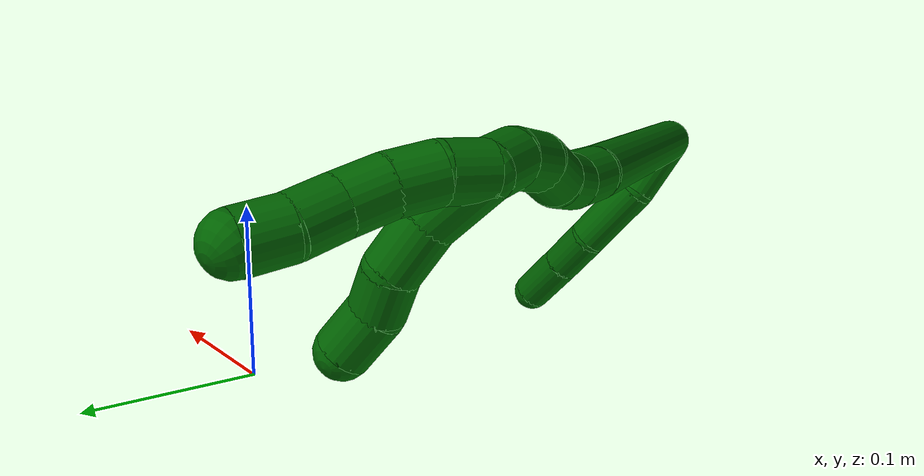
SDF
<sdf version="1.7">
 <world name="default">
  <model name="6">
   <static>0</static>
   <link name="6">
    <collision name="collision-cylinder-e_1_2_8">
     <pose>0.009391 -0.010909 -0.011493 2.38226 0.534967 1.20362</pose>
     <geometry><cylinder><radius>0.0125</radius><length>0.03684</length></cylinder></geometry>
     <surface>
      <friction><ode><mu>1.16</mu><mu2>1.16</mu2><slip1>0</slip1><slip2>0</slip2></ode></friction>
      <contact><ode><kp>1e+06</kp><kd>1</kd><max_vel>0</max_vel><min_depth>0.001</min_depth></ode></contact>
     </surface>
    </collision>
    <visual name="visual-cylinder-e_1_2_8">
     <pose>0.009391 -0.010909 -0.011493 2.38226 0.534967 1.20362</pose>
     <geometry><cylinder><radius>0.0125</radius><length>0.03684</length></cylinder></geometry>
     <material><ambient>0 0.392157 0.003922 1</ambient></material>
    </visual>
    <collision name="collision-cylinder-e_2_8_9">
     <pose>0.035482 -0.034288 -0.032269 2.21071 0.821211 1.42835</pose>
     <geometry><cylinder><radius>0.0125</radius><length>0.045631</length></cylinder></geometry>
     <surface>
      <friction><ode><mu>1.16</mu><mu2>1.16</mu2><slip1>0</slip1><slip2>0</slip2></ode></friction>
      <contact><ode><kp>1e+06</kp><kd>1</kd><max_vel>0</max_vel><min_depth>0.001</min_depth></ode></contact>
     </surface>
    </collision>
    <visual name="visual-cylinder-e_2_8_9">
     <pose>0.035482 -0.034288 -0.032269 2.21071 0.821211 1.42835</pose>
     <geometry><cylinder><radius>0.0125</radius><length>0.045631</length></cylinder></geometry>
     <material><ambient>0 0.392157 0.003922 1</ambient></material>
    </visual>
    <collision name="collision-cylinder-e_3_9_10">
     <pose>0.064119 -0.055648 -0.044088 1.84872 0.911778 1.15247</pose>
     <geometry><cylinder><radius>0.0125</radius><length>0.030198</length></cylinder></geometry>
     <surface>
      <friction><ode><mu>1.16</mu><mu2>1.16</mu2><slip1>0</slip1><slip2>0</slip2></ode></friction>
      <contact><ode><kp>1e+06</kp><kd>1</kd><max_vel>0</max_vel><min_depth>0.001</min_depth></ode></contact>
     </surface>
    </collision>
    <visual name="visual-cylinder-e_3_9_10">
     <pose>0.064119 -0.055648 -0.044088 1.84872 0.911778 1.15247</pose>
     <geometry><cylinder><radius>0.0125</radius><length>0.030198</length></cylinder></geometry>
     <material><ambient>0 0.392157 0.003922 1</ambient></material>
    </visual>
    <collision name="collision-cylinder-e_4_10_6">
     <pose>0.091075 -0.075342 -0.049103 1.7963 0.935015 1.12975</pose>
     <geometry><cylinder><radius>0.0125</radius><length>0.037331</length></cylinder></geometry>
     <surface>
      <friction><ode><mu>1.16</mu><mu2>1.16</mu2><slip1>0</slip1><slip2>0</slip2></ode></friction>
      <contact><ode><kp>1e+06</kp><kd>1</kd><max_vel>0</max_vel><min_depth>0.001</min_depth></ode></contact>
     </surface>
    </collision>
    <visual name="visual-cylinder-e_4_10_6">
     <pose>0.091075 -0.075342 -0.049103 1.7963 0.935015 1.12975</pose>
     <geometry><cylinder><radius>0.0125</radius><length>0.037331</length></cylinder></geometry>
     <material><ambient>0 0.392157 0.003922 1</ambient></material>
    </visual>
    <collision name="collision-cylinder-e_1_2_11">
     <pose>0.019877 -0.004861 0.000595 1.44893 1.32921 1.21257</pose>
     <geometry><cylinder><radius>0.0125</radius><length>0.040943</length></cylinder></geometry>
     <surface>
      <friction><ode><mu>1.16</mu><mu2>1.16</mu2><slip1>0</slip1><slip2>0</slip2></ode></friction>
      <contact><ode><kp>1e+06</kp><kd>1</kd><max_vel>0</max_vel><min_depth>0.001</min_depth></ode></contact>
     </surface>
    </collision>
    <visual name="visual-cylinder-e_1_2_11">
     <pose>0.019877 -0.004861 0.000595 1.44893 1.32921 1.21257</pose>
     <geometry><cylinder><radius>0.0125</radius><length>0.040943</length></cylinder></geometry>
     <material><ambient>0 0.392157 0.003922 1</ambient></material>
    </visual>
    <collision name="collision-cylinder-e_2_11_12">
     <pose>0.051887 -0.012657 0.001451 1.48224 1.33258 1.24741</pose>
     <geometry><cylinder><radius>0.0125</radius><length>0.02497</length></cylinder></geometry>
     <surface>
      <friction><ode><mu>1.16</mu><mu2>1.16</mu2><slip1>0</slip1><slip2>0</slip2></ode></friction>
      <contact><ode><kp>1e+06</kp><kd>1</kd><max_vel>0</max_vel><min_depth>0.001</min_depth></ode></contact>
     </surface>
    </collision>
    <visual name="visual-cylinder-e_2_11_12">
     <pose>0.051887 -0.012657 0.001451 1.48224 1.33258 1.24741</pose>
     <geometry><cylinder><radius>0.0125</radius><length>0.02497</length></cylinder></geometry>
     <material><ambient>0 0.392157 0.003922 1</ambient></material>
    </visual>
    <collision name="collision-cylinder-e_3_12_5">
     <pose>0.079421 -0.020235 0.007341 0.689728 1.12837 0.447025</pose>
     <geometry><cylinder><radius>0.0125</radius><length>0.034087</length></cylinder></geometry>
     <surface>
      <friction><ode><mu>1.16</mu><mu2>1.16</mu2><slip1>0</slip1><slip2>0</slip2></ode></friction>
      <contact><ode><kp>1e+06</kp><kd>1</kd><max_vel>0</max_vel><min_depth>0.001</min_depth></ode></contact>
     </surface>
    </collision>
    <visual name="visual-cylinder-e_3_12_5">
     <pose>0.079421 -0.020235 0.007341 0.689728 1.12837 0.447025</pose>
     <geometry><cylinder><radius>0.0125</radius><length>0.034087</length></cylinder></geometry>
     <material><ambient>0 0.392157 0.003922 1</ambient></material>
    </visual>
    <collision name="collision-cylinder-e_1_2_13">
     <pose>-0.033279 0.035618 -0.086123 -2.74944 -0.342963 1.43413</pose>
     <geometry><cylinder><radius>0.0125</radius><length>0.197922</length></cylinder></geometry>
     <surface>
      <friction><ode><mu>1.16</mu><mu2>1.16</mu2><slip1>0</slip1><slip2>0</slip2></ode></friction>
      <contact><ode><kp>1e+06</kp><kd>1</kd><max_vel>0</max_vel><min_depth>0.001</min_depth></ode></contact>
     </surface>
    </collision>
    <visual name="visual-cylinder-e_1_2_13">
     <pose>-0.033279 0.035618 -0.086123 -2.74944 -0.342963 1.43413</pose>
     <geometry><cylinder><radius>0.0125</radius><length>0.197922</length></cylinder></geometry>
     <material><ambient>0 0.392157 0.003922 1</ambient></material>
    </visual>
    <collision name="collision-cylinder-e_2_13_14">
     <pose>-0.067693 0.074848 -0.182299 -2.79674 -0.105903 0.590847</pose>
     <geometry><cylinder><radius>0.0125</radius><length>0.021484</length></cylinder></geometry>
     <surface>
      <friction><ode><mu>1.16</mu><mu2>1.16</mu2><slip1>0</slip1><slip2>0</slip2></ode></friction>
      <contact><ode><kp>1e+06</kp><kd>1</kd><max_vel>0</max_vel><min_depth>0.001</min_depth></ode></contact>
     </surface>
    </collision>
    <visual name="visual-cylinder-e_2_13_14">
     <pose>-0.067693 0.074848 -0.182299 -2.79674 -0.105903 0.590847</pose>
     <geometry><cylinder><radius>0.0125</radius><length>0.021484</length></cylinder></geometry>
     <material><ambient>0 0.392157 0.003922 1</ambient></material>
    </visual>
    <collision name="collision-cylinder-e_3_14_15">
     <pose>-0.071396 0.083766 -0.200626 -2.57132 -0.255549 0.826156</pose>
     <geometry><cylinder><radius>0.0125</radius><length>0.020319</length></cylinder></geometry>
     <surface>
      <friction><ode><mu>1.16</mu><mu2>1.16</mu2><slip1>0</slip1><slip2>0</slip2></ode></friction>
      <contact><ode><kp>1e+06</kp><kd>1</kd><max_vel>0</max_vel><min_depth>0.001</min_depth></ode></contact>
     </surface>
    </collision>
    <visual name="visual-cylinder-e_3_14_15">
     <pose>-0.071396 0.083766 -0.200626 -2.57132 -0.255549 0.826156</pose>
     <geometry><cylinder><radius>0.0125</radius><length>0.020319</length></cylinder></geometry>
     <material><ambient>0 0.392157 0.003922 1</ambient></material>
    </visual>
    <collision name="collision-cylinder-e_4_15_16">
     <pose>-0.07635 0.096497 -0.215325 -2.28413 -0.23837 0.512468</pose>
     <geometry><cylinder><radius>0.0125</radius><length>0.020207</length></cylinder></geometry>
     <surface>
      <friction><ode><mu>1.16</mu><mu2>1.16</mu2><slip1>0</slip1><slip2>0</slip2></ode></friction>
      <contact><ode><kp>1e+06</kp><kd>1</kd><max_vel>0</max_vel><min_depth>0.001</min_depth></ode></contact>
     </surface>
    </collision>
    <visual name="visual-cylinder-e_4_15_16">
     <pose>-0.07635 0.096497 -0.215325 -2.28413 -0.23837 0.512468</pose>
     <geometry><cylinder><radius>0.0125</radius><length>0.020207</length></cylinder></geometry>
     <material><ambient>0 0.392157 0.003922 1</ambient></material>
    </visual>
    <collision name="collision-cylinder-e_5_16_17">
     <pose>-0.079982 0.109361 -0.23006 -2.56195 -0.124846 0.413202</pose>
     <geometry><cylinder><radius>0.0125</radius><length>0.020021</length></cylinder></geometry>
     <surface>
      <friction><ode><mu>1.16</mu><mu2>1.16</mu2><slip1>0</slip1><slip2>0</slip2></ode></friction>
      <contact><ode><kp>1e+06</kp><kd>1</kd><max_vel>0</max_vel><min_depth>0.001</min_depth></ode></contact>
     </surface>
    </collision>
    <visual name="visual-cylinder-e_5_16_17">
     <pose>-0.079982 0.109361 -0.23006 -2.56195 -0.124846 0.413202</pose>
     <geometry><cylinder><radius>0.0125</radius><length>0.020021</length></cylinder></geometry>
     <material><ambient>0 0.392157 0.003922 1</ambient></material>
    </visual>
    <collision name="collision-cylinder-e_6_17_1">
     <pose>-0.082537 0.117259 -0.247998 -2.89163 -0.130871 0.96152</pose>
     <geometry><cylinder><radius>0.0125</radius><length>0.020046</length></cylinder></geometry>
     <surface>
      <friction><ode><mu>1.16</mu><mu2>1.16</mu2><slip1>0</slip1><slip2>0</slip2></ode></friction>
      <contact><ode><kp>1e+06</kp><kd>1</kd><max_vel>0</max_vel><min_depth>0.001</min_depth></ode></contact>
     </surface>
    </collision>
    <visual name="visual-cylinder-e_6_17_1">
     <pose>-0.082537 0.117259 -0.247998 -2.89163 -0.130871 0.96152</pose>
     <geometry><cylinder><radius>0.0125</radius><length>0.020046</length></cylinder></geometry>
     <material><ambient>0 0.392157 0.003922 1</ambient></material>
    </visual>
    <collision name="collision-cylinder-e_1_1_18">
     <pose>-0.072069 0.113315 -0.264922 2.42128 0.881431 1.79403</pose>
     <geometry><cylinder><radius>0.0125</radius><length>0.030521</length></cylinder></geometry>
     <surface>
      <friction><ode><mu>1.16</mu><mu2>1.16</mu2><slip1>0</slip1><slip2>0</slip2></ode></friction>
      <contact><ode><kp>1e+06</kp><kd>1</kd><max_vel>0</max_vel><min_depth>0.001</min_depth></ode></contact>
     </surface>
    </collision>
    <visual name="visual-cylinder-e_1_1_18">
     <pose>-0.072069 0.113315 -0.264922 2.42128 0.881431 1.79403</pose>
     <geometry><cylinder><radius>0.0125</radius><length>0.030521</length></cylinder></geometry>
     <material><ambient>0 0.392157 0.003922 1</ambient></material>
    </visual>
    <collision name="collision-cylinder-e_2_18_19">
     <pose>-0.052459 0.099636 -0.279118 2.32966 0.66317 1.35067</pose>
     <geometry><cylinder><radius>0.0125</radius><length>0.025451</length></cylinder></geometry>
     <surface>
      <friction><ode><mu>1.16</mu><mu2>1.16</mu2><slip1>0</slip1><slip2>0</slip2></ode></friction>
      <contact><ode><kp>1e+06</kp><kd>1</kd><max_vel>0</max_vel><min_depth>0.001</min_depth></ode></contact>
     </surface>
    </collision>
    <visual name="visual-cylinder-e_2_18_19">
     <pose>-0.052459 0.099636 -0.279118 2.32966 0.66317 1.35067</pose>
     <geometry><cylinder><radius>0.0125</radius><length>0.025451</length></cylinder></geometry>
     <material><ambient>0 0.392157 0.003922 1</ambient></material>
    </visual>
    <collision name="collision-cylinder-e_3_19_20">
     <pose>-0.039183 0.084488 -0.289074 1.94112 0.572544 0.812272</pose>
     <geometry><cylinder><radius>0.0125</radius><length>0.020092</length></cylinder></geometry>
     <surface>
      <friction><ode><mu>1.16</mu><mu2>1.16</mu2><slip1>0</slip1><slip2>0</slip2></ode></friction>
      <contact><ode><kp>1e+06</kp><kd>1</kd><max_vel>0</max_vel><min_depth>0.001</min_depth></ode></contact>
     </surface>
    </collision>
    <visual name="visual-cylinder-e_3_19_20">
     <pose>-0.039183 0.084488 -0.289074 1.94112 0.572544 0.812272</pose>
     <geometry><cylinder><radius>0.0125</radius><length>0.020092</length></cylinder></geometry>
     <material><ambient>0 0.392157 0.003922 1</ambient></material>
    </visual>
    <collision name="collision-cylinder-e_4_20_4">
     <pose>-0.025499 0.070083 -0.297844 2.28939 0.759529 1.44257</pose>
     <geometry><cylinder><radius>0.0125</radius><length>0.023936</length></cylinder></geometry>
     <surface>
      <friction><ode><mu>1.16</mu><mu2>1.16</mu2><slip1>0</slip1><slip2>0</slip2></ode></friction>
      <contact><ode><kp>1e+06</kp><kd>1</kd><max_vel>0</max_vel><min_depth>0.001</min_depth></ode></contact>
     </surface>
    </collision>
    <visual name="visual-cylinder-e_4_20_4">
     <pose>-0.025499 0.070083 -0.297844 2.28939 0.759529 1.44257</pose>
     <geometry><cylinder><radius>0.0125</radius><length>0.023936</length></cylinder></geometry>
     <material><ambient>0 0.392157 0.003922 1</ambient></material>
    </visual>
    <collision name="collision-cylinder-e_1_1_21">
     <pose>-0.080567 0.124157 -0.265966 -2.6524 0.333922 -1.1878</pose>
     <geometry><cylinder><radius>0.0125</radius><length>0.02</length></cylinder></geometry>
     <surface>
      <friction><ode><mu>1.16</mu><mu2>1.16</mu2><slip1>0</slip1><slip2>0</slip2></ode></friction>
      <contact><ode><kp>1e+06</kp><kd>1</kd><max_vel>0</max_vel><min_depth>0.001</min_depth></ode></contact>
     </surface>
    </collision>
    <visual name="visual-cylinder-e_1_1_21">
     <pose>-0.080567 0.124157 -0.265966 -2.6524 0.333922 -1.1878</pose>
     <geometry><cylinder><radius>0.0125</radius><length>0.02</length></cylinder></geometry>
     <material><ambient>0 0.392157 0.003922 1</ambient></material>
    </visual>
    <collision name="collision-cylinder-e_2_21_22">
     <pose>-0.073037 0.130953 -0.283045 -2.87823 0.439196 -2.07047</pose>
     <geometry><cylinder><radius>0.0125</radius><length>0.02</length></cylinder></geometry>
     <surface>
      <friction><ode><mu>1.16</mu><mu2>1.16</mu2><slip1>0</slip1><slip2>0</slip2></ode></friction>
      <contact><ode><kp>1e+06</kp><kd>1</kd><max_vel>0</max_vel><min_depth>0.001</min_depth></ode></contact>
     </surface>
    </collision>
    <visual name="visual-cylinder-e_2_21_22">
     <pose>-0.073037 0.130953 -0.283045 -2.87823 0.439196 -2.07047</pose>
     <geometry><cylinder><radius>0.0125</radius><length>0.02</length></cylinder></geometry>
     <material><ambient>0 0.392157 0.003922 1</ambient></material>
    </visual>
    <collision name="collision-cylinder-e_3_22_23">
     <pose>-0.065181 0.134582 -0.301024 -3.00468 0.368727 -2.43694</pose>
     <geometry><cylinder><radius>0.0125</radius><length>0.02</length></cylinder></geometry>
     <surface>
      <friction><ode><mu>1.16</mu><mu2>1.16</mu2><slip1>0</slip1><slip2>0</slip2></ode></friction>
      <contact><ode><kp>1e+06</kp><kd>1</kd><max_vel>0</max_vel><min_depth>0.001</min_depth></ode></contact>
     </surface>
    </collision>
    <visual name="visual-cylinder-e_3_22_23">
     <pose>-0.065181 0.134582 -0.301024 -3.00468 0.368727 -2.43694</pose>
     <geometry><cylinder><radius>0.0125</radius><length>0.02</length></cylinder></geometry>
     <material><ambient>0 0.392157 0.003922 1</ambient></material>
    </visual>
    <collision name="collision-cylinder-e_4_23_24">
     <pose>-0.059475 0.13734 -0.319928 -2.98918 0.211784 -1.89572</pose>
     <geometry><cylinder><radius>0.0125</radius><length>0.02</length></cylinder></geometry>
     <surface>
      <friction><ode><mu>1.16</mu><mu2>1.16</mu2><slip1>0</slip1><slip2>0</slip2></ode></friction>
      <contact><ode><kp>1e+06</kp><kd>1</kd><max_vel>0</max_vel><min_depth>0.001</min_depth></ode></contact>
     </surface>
    </collision>
    <visual name="visual-cylinder-e_4_23_24">
     <pose>-0.059475 0.13734 -0.319928 -2.98918 0.211784 -1.89572</pose>
     <geometry><cylinder><radius>0.0125</radius><length>0.02</length></cylinder></geometry>
     <material><ambient>0 0.392157 0.003922 1</ambient></material>
    </visual>
    <collision name="collision-cylinder-e_5_24_3">
     <pose>-0.053921 0.14135 -0.33863 -2.86913 0.352411 -1.82938</pose>
     <geometry><cylinder><radius>0.0125</radius><length>0.02</length></cylinder></geometry>
     <surface>
      <friction><ode><mu>1.16</mu><mu2>1.16</mu2><slip1>0</slip1><slip2>0</slip2></ode></friction>
      <contact><ode><kp>1e+06</kp><kd>1</kd><max_vel>0</max_vel><min_depth>0.001</min_depth></ode></contact>
     </surface>
    </collision>
    <visual name="visual-cylinder-e_5_24_3">
     <pose>-0.053921 0.14135 -0.33863 -2.86913 0.352411 -1.82938</pose>
     <geometry><cylinder><radius>0.0125</radius><length>0.02</length></cylinder></geometry>
     <material><ambient>0 0.392157 0.003922 1</ambient></material>
    </visual>
    <collision name="collision-sphere-3">
     <pose>-0.050469 0.143875 -0.34767 0 -0 0</pose>
     <geometry><sphere><radius>0.0125</radius></sphere></geometry>
     <surface>
      <friction><ode><mu>1.16</mu><mu2>1.16</mu2><slip1>0</slip1><slip2>0</slip2></ode></friction>
      <contact><ode><kp>1e+06</kp><kd>1</kd><max_vel>0</max_vel><min_depth>0.001</min_depth></ode></contact>
     </surface>
    </collision>
    <visual name="visual-sphere-3">
     <pose>-0.050469 0.143875 -0.34767 0 -0 0</pose>
     <geometry><sphere><radius>0.0125</radius></sphere></geometry>
     <material><ambient>0 0.392157 0.003922 1</ambient></material>
    </visual>
    <collision name="collision-sphere-24">
     <pose>-0.057373 0.138824 -0.329591 0 -0 0</pose>
     <geometry><sphere><radius>0.0125</radius></sphere></geometry>
     <surface>
      <friction><ode><mu>1.16</mu><mu2>1.16</mu2><slip1>0</slip1><slip2>0</slip2></ode></friction>
      <contact><ode><kp>1e+06</kp><kd>1</kd><max_vel>0</max_vel><min_depth>0.001</min_depth></ode></contact>
     </surface>
    </collision>
    <visual name="visual-sphere-24">
     <pose>-0.057373 0.138824 -0.329591 0 -0 0</pose>
     <geometry><sphere><radius>0.0125</radius></sphere></geometry>
     <material><ambient>0 0.392157 0.003922 1</ambient></material>
    </visual>
    <collision name="collision-sphere-23">
     <pose>-0.061577 0.135855 -0.310265 0 -0 0</pose>
     <geometry><sphere><radius>0.0125</radius></sphere></geometry>
     <surface>
      <friction><ode><mu>1.16</mu><mu2>1.16</mu2><slip1>0</slip1><slip2>0</slip2></ode></friction>
      <contact><ode><kp>1e+06</kp><kd>1</kd><max_vel>0</max_vel><min_depth>0.001</min_depth></ode></contact>
     </surface>
    </collision>
    <visual name="visual-sphere-23">
     <pose>-0.061577 0.135855 -0.310265 0 -0 0</pose>
     <geometry><sphere><radius>0.0125</radius></sphere></geometry>
     <material><ambient>0 0.392157 0.003922 1</ambient></material>
    </visual>
    <collision name="collision-sphere-22">
     <pose>-0.068785 0.133309 -0.291784 0 -0 0</pose>
     <geometry><sphere><radius>0.0125</radius></sphere></geometry>
     <surface>
      <friction><ode><mu>1.16</mu><mu2>1.16</mu2><slip1>0</slip1><slip2>0</slip2></ode></friction>
      <contact><ode><kp>1e+06</kp><kd>1</kd><max_vel>0</max_vel><min_depth>0.001</min_depth></ode></contact>
     </surface>
    </collision>
    <visual name="visual-sphere-22">
     <pose>-0.068785 0.133309 -0.291784 0 -0 0</pose>
     <geometry><sphere><radius>0.0125</radius></sphere></geometry>
     <material><ambient>0 0.392157 0.003922 1</ambient></material>
    </visual>
    <collision name="collision-sphere-21">
     <pose>-0.07729 0.128597 -0.274306 0 -0 0</pose>
     <geometry><sphere><radius>0.0125</radius></sphere></geometry>
     <surface>
      <friction><ode><mu>1.16</mu><mu2>1.16</mu2><slip1>0</slip1><slip2>0</slip2></ode></friction>
      <contact><ode><kp>1e+06</kp><kd>1</kd><max_vel>0</max_vel><min_depth>0.001</min_depth></ode></contact>
     </surface>
    </collision>
    <visual name="visual-sphere-21">
     <pose>-0.07729 0.128597 -0.274306 0 -0 0</pose>
     <geometry><sphere><radius>0.0125</radius></sphere></geometry>
     <material><ambient>0 0.392157 0.003922 1</ambient></material>
    </visual>
    <collision name="collision-sphere-4">
     <pose>-0.017258 0.063551 -0.303557 0 -0 0</pose>
     <geometry><sphere><radius>0.0125</radius></sphere></geometry>
     <surface>
      <friction><ode><mu>1.16</mu><mu2>1.16</mu2><slip1>0</slip1><slip2>0</slip2></ode></friction>
      <contact><ode><kp>1e+06</kp><kd>1</kd><max_vel>0</max_vel><min_depth>0.001</min_depth></ode></contact>
     </surface>
    </collision>
    <visual name="visual-sphere-4">
     <pose>-0.017258 0.063551 -0.303557 0 -0 0</pose>
     <geometry><sphere><radius>0.0125</radius></sphere></geometry>
     <material><ambient>0 0.392157 0.003922 1</ambient></material>
    </visual>
    <collision name="collision-sphere-20">
     <pose>-0.03374 0.076616 -0.29213 0 -0 0</pose>
     <geometry><sphere><radius>0.0125</radius></sphere></geometry>
     <surface>
      <friction><ode><mu>1.16</mu><mu2>1.16</mu2><slip1>0</slip1><slip2>0</slip2></ode></friction>
      <contact><ode><kp>1e+06</kp><kd>1</kd><max_vel>0</max_vel><min_depth>0.001</min_depth></ode></contact>
     </surface>
    </collision>
    <visual name="visual-sphere-20">
     <pose>-0.03374 0.076616 -0.29213 0 -0 0</pose>
     <geometry><sphere><radius>0.0125</radius></sphere></geometry>
     <material><ambient>0 0.392157 0.003922 1</ambient></material>
    </visual>
    <collision name="collision-sphere-11">
     <pose>0.039754 -0.009723 0.001191 0 -0 0</pose>
     <geometry><sphere><radius>0.0125</radius></sphere></geometry>
     <surface>
      <friction><ode><mu>1.16</mu><mu2>1.16</mu2><slip1>0</slip1><slip2>0</slip2></ode></friction>
      <contact><ode><kp>1e+06</kp><kd>1</kd><max_vel>0</max_vel><min_depth>0.001</min_depth></ode></contact>
     </surface>
    </collision>
    <visual name="visual-sphere-11">
     <pose>0.039754 -0.009723 0.001191 0 -0 0</pose>
     <geometry><sphere><radius>0.0125</radius></sphere></geometry>
     <material><ambient>0 0.392157 0.003922 1</ambient></material>
    </visual>
    <collision name="collision-sphere-6">
     <pose>0.106093 -0.086145 -0.051581 0 -0 0</pose>
     <geometry><sphere><radius>0.0125</radius></sphere></geometry>
     <surface>
      <friction><ode><mu>1.16</mu><mu2>1.16</mu2><slip1>0</slip1><slip2>0</slip2></ode></friction>
      <contact><ode><kp>1e+06</kp><kd>1</kd><max_vel>0</max_vel><min_depth>0.001</min_depth></ode></contact>
     </surface>
    </collision>
    <visual name="visual-sphere-6">
     <pose>0.106093 -0.086145 -0.051581 0 -0 0</pose>
     <geometry><sphere><radius>0.0125</radius></sphere></geometry>
     <material><ambient>0 0.392157 0.003922 1</ambient></material>
    </visual>
    <collision name="collision-sphere-10">
     <pose>0.076056 -0.064539 -0.046625 0 -0 0</pose>
     <geometry><sphere><radius>0.0125</radius></sphere></geometry>
     <surface>
      <friction><ode><mu>1.16</mu><mu2>1.16</mu2><slip1>0</slip1><slip2>0</slip2></ode></friction>
      <contact><ode><kp>1e+06</kp><kd>1</kd><max_vel>0</max_vel><min_depth>0.001</min_depth></ode></contact>
     </surface>
    </collision>
    <visual name="visual-sphere-10">
     <pose>0.076056 -0.064539 -0.046625 0 -0 0</pose>
     <geometry><sphere><radius>0.0125</radius></sphere></geometry>
     <material><ambient>0 0.392157 0.003922 1</ambient></material>
    </visual>
    <collision name="collision-sphere-9">
     <pose>0.052182 -0.046757 -0.041551 0 -0 0</pose>
     <geometry><sphere><radius>0.0125</radius></sphere></geometry>
     <surface>
      <friction><ode><mu>1.16</mu><mu2>1.16</mu2><slip1>0</slip1><slip2>0</slip2></ode></friction>
      <contact><ode><kp>1e+06</kp><kd>1</kd><max_vel>0</max_vel><min_depth>0.001</min_depth></ode></contact>
     </surface>
    </collision>
    <visual name="visual-sphere-9">
     <pose>0.052182 -0.046757 -0.041551 0 -0 0</pose>
     <geometry><sphere><radius>0.0125</radius></sphere></geometry>
     <material><ambient>0 0.392157 0.003922 1</ambient></material>
    </visual>
    <collision name="collision-sphere-2">
     <geometry><sphere><radius>0.0125</radius></sphere></geometry>
     <surface>
      <friction><ode><mu>1.16</mu><mu2>1.16</mu2><slip1>0</slip1><slip2>0</slip2></ode></friction>
      <contact><ode><kp>1e+06</kp><kd>1</kd><max_vel>0</max_vel><min_depth>0.001</min_depth></ode></contact>
     </surface>
    </collision>
    <visual name="visual-sphere-2">
     <geometry><sphere><radius>0.0125</radius></sphere></geometry>
     <material><ambient>0 0.392157 0.003922 1</ambient></material>
    </visual>
    <collision name="collision-sphere-19">
     <pose>-0.044625 0.092359 -0.286018 0 -0 0</pose>
     <geometry><sphere><radius>0.0125</radius></sphere></geometry>
     <surface>
      <friction><ode><mu>1.16</mu><mu2>1.16</mu2><slip1>0</slip1><slip2>0</slip2></ode></friction>
      <contact><ode><kp>1e+06</kp><kd>1</kd><max_vel>0</max_vel><min_depth>0.001</min_depth></ode></contact>
     </surface>
    </collision>
    <visual name="visual-sphere-19">
     <pose>-0.044625 0.092359 -0.286018 0 -0 0</pose>
     <geometry><sphere><radius>0.0125</radius></sphere></geometry>
     <material><ambient>0 0.392157 0.003922 1</ambient></material>
    </visual>
    <collision name="collision-sphere-8">
     <pose>0.018782 -0.021819 -0.022987 0 -0 0</pose>
     <geometry><sphere><radius>0.0125</radius></sphere></geometry>
     <surface>
      <friction><ode><mu>1.16</mu><mu2>1.16</mu2><slip1>0</slip1><slip2>0</slip2></ode></friction>
      <contact><ode><kp>1e+06</kp><kd>1</kd><max_vel>0</max_vel><min_depth>0.001</min_depth></ode></contact>
     </surface>
    </collision>
    <visual name="visual-sphere-8">
     <pose>0.018782 -0.021819 -0.022987 0 -0 0</pose>
     <geometry><sphere><radius>0.0125</radius></sphere></geometry>
     <material><ambient>0 0.392157 0.003922 1</ambient></material>
    </visual>
    <collision name="collision-sphere-12">
     <pose>0.064019 -0.015592 0.001712 0 -0 0</pose>
     <geometry><sphere><radius>0.0125</radius></sphere></geometry>
     <surface>
      <friction><ode><mu>1.16</mu><mu2>1.16</mu2><slip1>0</slip1><slip2>0</slip2></ode></friction>
      <contact><ode><kp>1e+06</kp><kd>1</kd><max_vel>0</max_vel><min_depth>0.001</min_depth></ode></contact>
     </surface>
    </collision>
    <visual name="visual-sphere-12">
     <pose>0.064019 -0.015592 0.001712 0 -0 0</pose>
     <geometry><sphere><radius>0.0125</radius></sphere></geometry>
     <material><ambient>0 0.392157 0.003922 1</ambient></material>
    </visual>
    <collision name="collision-sphere-5">
     <pose>0.094824 -0.024878 0.01297 0 -0 0</pose>
     <geometry><sphere><radius>0.0125</radius></sphere></geometry>
     <surface>
      <friction><ode><mu>1.16</mu><mu2>1.16</mu2><slip1>0</slip1><slip2>0</slip2></ode></friction>
      <contact><ode><kp>1e+06</kp><kd>1</kd><max_vel>0</max_vel><min_depth>0.001</min_depth></ode></contact>
     </surface>
    </collision>
    <visual name="visual-sphere-5">
     <pose>0.094824 -0.024878 0.01297 0 -0 0</pose>
     <geometry><sphere><radius>0.0125</radius></sphere></geometry>
     <material><ambient>0 0.392157 0.003922 1</ambient></material>
    </visual>
    <collision name="collision-sphere-13">
     <pose>-0.066557 0.071237 -0.172246 0 -0 0</pose>
     <geometry><sphere><radius>0.0125</radius></sphere></geometry>
     <surface>
      <friction><ode><mu>1.16</mu><mu2>1.16</mu2><slip1>0</slip1><slip2>0</slip2></ode></friction>
      <contact><ode><kp>1e+06</kp><kd>1</kd><max_vel>0</max_vel><min_depth>0.001</min_depth></ode></contact>
     </surface>
    </collision>
    <visual name="visual-sphere-13">
     <pose>-0.066557 0.071237 -0.172246 0 -0 0</pose>
     <geometry><sphere><radius>0.0125</radius></sphere></geometry>
     <material><ambient>0 0.392157 0.003922 1</ambient></material>
    </visual>
    <collision name="collision-sphere-14">
     <pose>-0.068828 0.078459 -0.192352 0 -0 0</pose>
     <geometry><sphere><radius>0.0125</radius></sphere></geometry>
     <surface>
      <friction><ode><mu>1.16</mu><mu2>1.16</mu2><slip1>0</slip1><slip2>0</slip2></ode></friction>
      <contact><ode><kp>1e+06</kp><kd>1</kd><max_vel>0</max_vel><min_depth>0.001</min_depth></ode></contact>
     </surface>
    </collision>
    <visual name="visual-sphere-14">
     <pose>-0.068828 0.078459 -0.192352 0 -0 0</pose>
     <geometry><sphere><radius>0.0125</radius></sphere></geometry>
     <material><ambient>0 0.392157 0.003922 1</ambient></material>
    </visual>
    <collision name="collision-sphere-15">
     <pose>-0.073964 0.089072 -0.208901 0 -0 0</pose>
     <geometry><sphere><radius>0.0125</radius></sphere></geometry>
     <surface>
      <friction><ode><mu>1.16</mu><mu2>1.16</mu2><slip1>0</slip1><slip2>0</slip2></ode></friction>
      <contact><ode><kp>1e+06</kp><kd>1</kd><max_vel>0</max_vel><min_depth>0.001</min_depth></ode></contact>
     </surface>
    </collision>
    <visual name="visual-sphere-15">
     <pose>-0.073964 0.089072 -0.208901 0 -0 0</pose>
     <geometry><sphere><radius>0.0125</radius></sphere></geometry>
     <material><ambient>0 0.392157 0.003922 1</ambient></material>
    </visual>
    <collision name="collision-sphere-16">
     <pose>-0.078736 0.103921 -0.22175 0 -0 0</pose>
     <geometry><sphere><radius>0.0125</radius></sphere></geometry>
     <surface>
      <friction><ode><mu>1.16</mu><mu2>1.16</mu2><slip1>0</slip1><slip2>0</slip2></ode></friction>
      <contact><ode><kp>1e+06</kp><kd>1</kd><max_vel>0</max_vel><min_depth>0.001</min_depth></ode></contact>
     </surface>
    </collision>
    <visual name="visual-sphere-16">
     <pose>-0.078736 0.103921 -0.22175 0 -0 0</pose>
     <geometry><sphere><radius>0.0125</radius></sphere></geometry>
     <material><ambient>0 0.392157 0.003922 1</ambient></material>
    </visual>
    <collision name="collision-sphere-17">
     <pose>-0.081229 0.114801 -0.23837 0 -0 0</pose>
     <geometry><sphere><radius>0.0125</radius></sphere></geometry>
     <surface>
      <friction><ode><mu>1.16</mu><mu2>1.16</mu2><slip1>0</slip1><slip2>0</slip2></ode></friction>
      <contact><ode><kp>1e+06</kp><kd>1</kd><max_vel>0</max_vel><min_depth>0.001</min_depth></ode></contact>
     </surface>
    </collision>
    <visual name="visual-sphere-17">
     <pose>-0.081229 0.114801 -0.23837 0 -0 0</pose>
     <geometry><sphere><radius>0.0125</radius></sphere></geometry>
     <material><ambient>0 0.392157 0.003922 1</ambient></material>
    </visual>
    <collision name="collision-sphere-1">
     <pose>-0.083845 0.119718 -0.257627 0 -0 0</pose>
     <geometry><sphere><radius>0.0125</radius></sphere></geometry>
     <surface>
      <friction><ode><mu>1.16</mu><mu2>1.16</mu2><slip1>0</slip1><slip2>0</slip2></ode></friction>
      <contact><ode><kp>1e+06</kp><kd>1</kd><max_vel>0</max_vel><min_depth>0.001</min_depth></ode></contact>
     </surface>
    </collision>
    <visual name="visual-sphere-1">
     <pose>-0.083845 0.119718 -0.257627 0 -0 0</pose>
     <geometry><sphere><radius>0.0125</radius></sphere></geometry>
     <material><ambient>0 0.392157 0.003922 1</ambient></material>
    </visual>
    <collision name="collision-sphere-18">
     <pose>-0.060293 0.106913 -0.272217 0 -0 0</pose>
     <geometry><sphere><radius>0.0125</radius></sphere></geometry>
     <surface>
      <friction><ode><mu>1.16</mu><mu2>1.16</mu2><slip1>0</slip1><slip2>0</slip2></ode></friction>
      <contact><ode><kp>1e+06</kp><kd>1</kd><max_vel>0</max_vel><min_depth>0.001</min_depth></ode></contact>
     </surface>
    </collision>
    <visual name="visual-sphere-18">
     <pose>-0.060293 0.106913 -0.272217 0 -0 0</pose>
     <geometry><sphere><radius>0.0125</radius></sphere></geometry>
     <material><ambient>0 0.392157 0.003922 1</ambient></material>
    </visual>
    <inertial>
     <pose>-0.018331 0.042563 -0.136021 0 -0 0</pose>
     <mass>0.75</mass>
     <inertia><ixx>0.000747</ixx><ixy>0</ixy><ixz>0</ixz><iyy>0.00066</iyy><iyz>0</iyz><izz>-7e-05</izz></inertia>
    </inertial>
   </link>
   <pose>-0.081442 -0.251122 0.12609 1.18721 0.133524 0.2385</pose>
  </model>
 </world>
</sdf>
